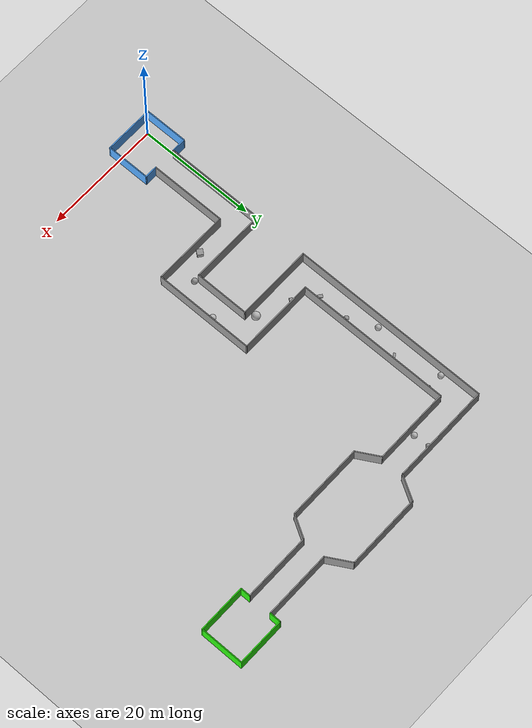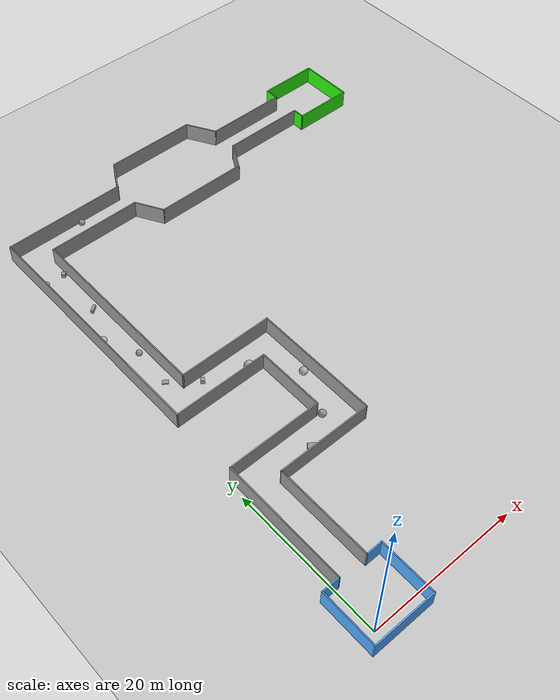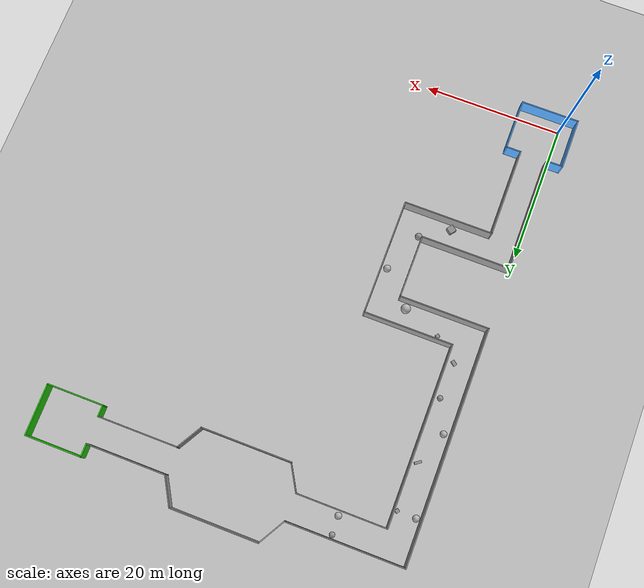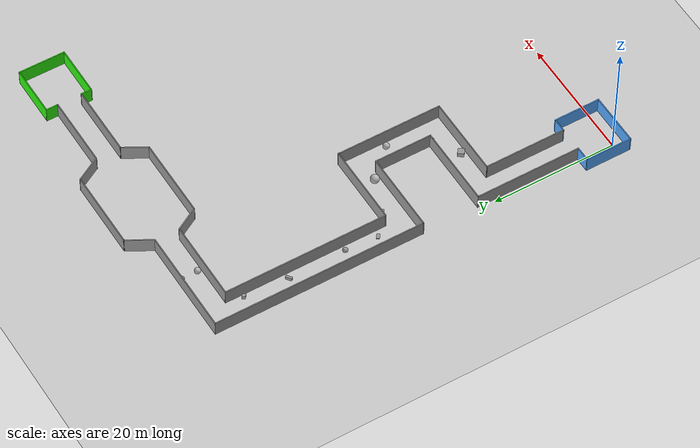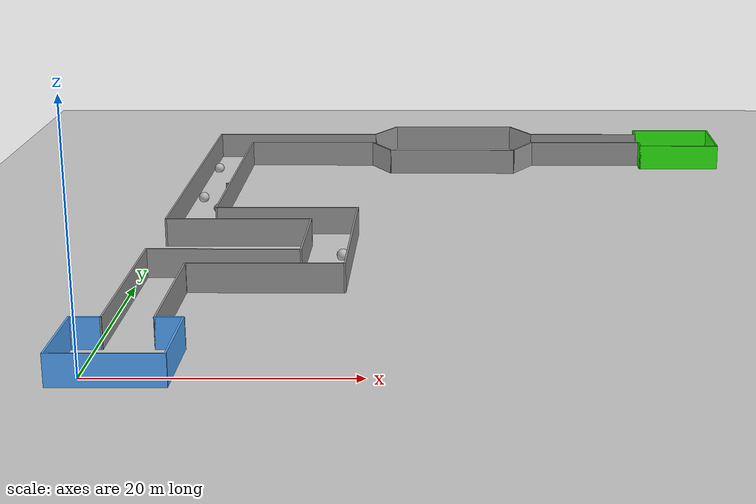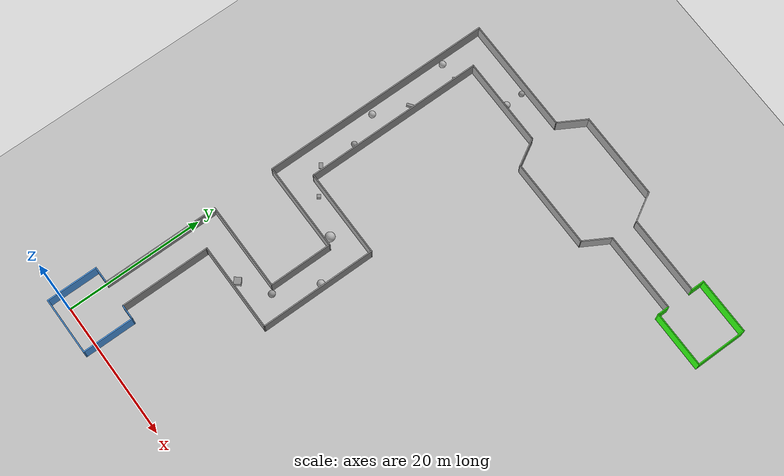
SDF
<sdf version="1.6">
 <world name="default">
  <light name="sun" type="directional">
   <pose>0 0 10 0 -0 0</pose>
   <diffuse>0.8 0.8 0.8 1</diffuse>
   <specular>0.2 0.2 0.2 1</specular>
   <attenuation>
    <range>1000</range>
    <constant>0.9</constant>
    <linear>0.01</linear>
    <quadratic>0.001</quadratic>
   </attenuation>
   <direction>-0.5 0.1 -0.9</direction>
  </light>
  <model name="ground_plane">
   <static>1</static>
   <link name="link">
    <collision name="collision">
     <geometry><plane><normal>0 0 1</normal><size>300 300</size></plane></geometry>
     <surface>
      <contact><collide_bitmask>65535</collide_bitmask></contact>
      <friction><ode><mu>100</mu><mu2>50</mu2></ode></friction>
     </surface>
    </collision>
    <visual name="visual">
     <cast_shadows>0</cast_shadows>
     <geometry><plane><normal>0 0 1</normal><size>300 300</size></plane></geometry>
     <material>
      <script><uri>file://media/materials/scripts/gazebo.material</uri><name>Gazebo/Grey</name></script>
     </material>
    </visual>
   </link>
  </model>
  <gravity>0 0 -9.8</gravity>
  <magnetic_field>6e-06 2.3e-05 -4.2e-05</magnetic_field>
  <atmosphere type="adiabatic"/>
  <physics name="default_physics" default="0" type="ode">
   <max_step_size>0.001</max_step_size>
   <real_time_factor>1</real_time_factor>
   <real_time_update_rate>1000</real_time_update_rate>
  </physics>
  <scene><ambient>0.4 0.4 0.4 1</ambient><background>0.7 0.7 0.7 1</background><shadows>1</shadows></scene>
  <spherical_coordinates>
   <surface_model>EARTH_WGS84</surface_model>
   <latitude_deg>0</latitude_deg>
   <longitude_deg>0</longitude_deg>
   <elevation>0</elevation>
   <heading_deg>0</heading_deg>
  </spherical_coordinates>
  <model name="vis_cue_test_field_bigger">
   <pose>25.9361 33.8207 0 0 -0 0</pose>
   <link name="Wall_0">
    <collision name="Wall_0_Collision">
     <geometry><box><size>8.51036 0.16 2.5</size></box></geometry>
     <pose>0 0 1.25 0 -0 0</pose>
    </collision>
    <visual name="Wall_0_Visual">
     <pose>0 0 1.25 0 -0 0</pose>
     <geometry><box><size>8.51036 0.16 2.5</size></box></geometry>
     <material>
      <script><uri>file://media/materials/scripts/gazebo.material</uri><name>Gazebo/Grey</name></script>
      <ambient>0.333333 0.666667 1 1</ambient>
     </material>
     <meta><layer>0</layer></meta>
    </visual>
    <pose>-23.6226 -35.4698 0 0 -0 0</pose>
   </link>
   <link name="Wall_1">
    <collision name="Wall_1_Collision">
     <geometry><box><size>7.5 0.15 2.5</size></box></geometry>
     <pose>0 0 1.25 0 -0 0</pose>
    </collision>
    <visual name="Wall_1_Visual">
     <pose>0 0 1.25 0 -0 0</pose>
     <geometry><box><size>7.5 0.15 2.5</size></box></geometry>
     <material>
      <script><uri>file://media/materials/scripts/gazebo.material</uri><name>Gazebo/Grey</name></script>
      <ambient>0.333333 0.666667 1 1</ambient>
     </material>
     <meta><layer>0</layer></meta>
    </visual>
    <pose>-19.4474 -31.7948 0 0 -0 1.57075</pose>
   </link>
   <link name="Wall_11">
    <collision name="Wall_11_Collision">
     <geometry><box><size>13 0.15 2.5</size></box></geometry>
     <pose>0 0 1.25 0 -0 0</pose>
    </collision>
    <visual name="Wall_11_Visual">
     <pose>0 0 1.25 0 -0 0</pose>
     <geometry><box><size>13 0.15 2.5</size></box></geometry>
     <material>
      <script><uri>file://media/materials/scripts/gazebo.material</uri><name>Gazebo/Grey</name></script>
      <ambient>1 1 1 1</ambient>
     </material>
     <meta><layer>0</layer></meta>
    </visual>
    <pose>-21.5472 -21.6949 0 0 -0 1.5708</pose>
   </link>
   <link name="Wall_14">
    <collision name="Wall_14_Collision">
     <geometry><box><size>0.25 0.15 2.5</size></box></geometry>
     <pose>0 0 1.25 0 -0 0</pose>
    </collision>
    <visual name="Wall_14_Visual">
     <pose>0 0 1.25 0 -0 0</pose>
     <geometry><box><size>0.25 0.15 2.5</size></box></geometry>
     <material>
      <script><uri>file://media/materials/scripts/gazebo.material</uri><name>Gazebo/Grey</name></script>
      <ambient>1 1 1 1</ambient>
     </material>
     <meta><layer>0</layer></meta>
    </visual>
    <pose>-21.5472 -15.2199 0 0 -0 1.5708</pose>
   </link>
   <link name="Wall_15">
    <collision name="Wall_15_Collision">
     <geometry><box><size>13 0.15 2.5</size></box></geometry>
     <pose>0 0 1.25 0 -0 0</pose>
    </collision>
    <visual name="Wall_15_Visual">
     <pose>0 0 1.25 0 -0 0</pose>
     <geometry><box><size>13 0.15 2.5</size></box></geometry>
     <material>
      <script><uri>file://media/materials/scripts/gazebo.material</uri><name>Gazebo/Grey</name></script>
      <ambient>1 1 1 1</ambient>
     </material>
     <meta><layer>0</layer></meta>
    </visual>
    <pose>-15.1222 -15.1699 0 0 -0 0</pose>
   </link>
   <link name="Wall_17">
    <collision name="Wall_17_Collision">
     <geometry><box><size>13 0.15 2.5</size></box></geometry>
     <pose>0 0 1.25 0 -0 0</pose>
    </collision>
    <visual name="Wall_17_Visual">
     <pose>0 0 1.25 0 -0 0</pose>
     <geometry><box><size>13 0.15 2.5</size></box></geometry>
     <material>
      <script><uri>file://media/materials/scripts/gazebo.material</uri><name>Gazebo/Grey</name></script>
      <ambient>1 1 1 1</ambient>
     </material>
     <meta><layer>0</layer></meta>
    </visual>
    <pose>-19.0222 -11.2699 0 0 -0 0</pose>
   </link>
   <link name="Wall_2">
    <collision name="Wall_2_Collision">
     <geometry><box><size>2.25 0.15 2.5</size></box></geometry>
     <pose>0 0 1.25 0 -0 0</pose>
    </collision>
    <visual name="Wall_2_Visual">
     <pose>0 0 1.25 0 -0 0</pose>
     <geometry><box><size>2.25 0.15 2.5</size></box></geometry>
     <material>
      <script><uri>file://media/materials/scripts/gazebo.material</uri><name>Gazebo/Grey</name></script>
      <ambient>0.333333 0.666667 1 1</ambient>
     </material>
     <meta><layer>0</layer></meta>
    </visual>
    <pose>-20.4972 -28.1199 0 0 -0 3.14159</pose>
   </link>
   <link name="Wall_20">
    <collision name="Wall_20_Collision">
     <geometry><box><size>17 0.15 2.5</size></box></geometry>
     <pose>0 0 1.25 0 -0 0</pose>
    </collision>
    <visual name="Wall_20_Visual">
     <pose>0 0 1.25 0 -0 0</pose>
     <geometry><box><size>17 0.15 2.5</size></box></geometry>
     <material>
      <script><uri>file://media/materials/scripts/gazebo.material</uri><name>Gazebo/Grey</name></script>
      <ambient>1 1 1 1</ambient>
     </material>
     <meta><layer>0</layer></meta>
    </visual>
    <pose>-8.69723 -6.74491 0 0 -0 1.5708</pose>
   </link>
   <link name="Wall_23">
    <collision name="Wall_23_Collision">
     <geometry><box><size>9.25 0.15 2.5</size></box></geometry>
     <pose>0 0 1.25 0 -0 0</pose>
    </collision>
    <visual name="Wall_23_Visual">
     <pose>0 0 1.25 0 -0 0</pose>
     <geometry><box><size>9.25 0.15 2.5</size></box></geometry>
     <material>
      <script><uri>file://media/materials/scripts/gazebo.material</uri><name>Gazebo/Grey</name></script>
      <ambient>1 1 1 1</ambient>
     </material>
     <meta><layer>0</layer></meta>
    </visual>
    <pose>-12.5972 -6.71991 0 0 -0 1.5708</pose>
   </link>
   <link name="Wall_25">
    <collision name="Wall_25_Collision">
     <geometry><box><size>13 0.15 2.5</size></box></geometry>
     <pose>0 0 1.25 0 -0 0</pose>
    </collision>
    <visual name="Wall_25_Visual">
     <pose>0 0 1.25 0 -0 0</pose>
     <geometry><box><size>13 0.15 2.5</size></box></geometry>
     <material>
      <script><uri>file://media/materials/scripts/gazebo.material</uri><name>Gazebo/Grey</name></script>
      <ambient>1 1 1 1</ambient>
     </material>
     <meta><layer>0</layer></meta>
    </visual>
    <pose>-15.1222 1.68009 0 0 -0 3.14159</pose>
   </link>
   <link name="Wall_29">
    <collision name="Wall_29_Collision">
     <geometry><box><size>13 0.15 2.5</size></box></geometry>
     <pose>0 0 1.25 0 -0 0</pose>
    </collision>
    <visual name="Wall_29_Visual">
     <pose>0 0 1.25 0 -0 0</pose>
     <geometry><box><size>13 0.15 2.5</size></box></geometry>
     <material>
      <script><uri>file://media/materials/scripts/gazebo.material</uri><name>Gazebo/Grey</name></script>
      <ambient>1 1 1 1</ambient>
     </material>
     <meta><layer>0</layer></meta>
    </visual>
    <pose>-19.0222 -2.16991 0 0 -0 3.14159</pose>
   </link>
   <link name="Wall_31">
    <collision name="Wall_31_Collision">
     <geometry><box><size>34 0.15 2.5</size></box></geometry>
     <pose>0 0 1.25 0 -0 0</pose>
    </collision>
    <visual name="Wall_31_Visual">
     <pose>0 0 1.25 0 -0 0</pose>
     <geometry><box><size>34 0.15 2.5</size></box></geometry>
     <material>
      <script><uri>file://media/materials/scripts/gazebo.material</uri><name>Gazebo/Grey</name></script>
      <ambient>1 1 1 1</ambient>
     </material>
     <meta><layer>0</layer></meta>
    </visual>
    <pose>-25.4472 14.7551 0 0 -0 1.5708</pose>
   </link>
   <link name="Wall_33">
    <collision name="Wall_33_Collision">
     <geometry><box><size>26.25 0.15 2.5</size></box></geometry>
     <pose>0 0 1.25 0 -0 0</pose>
    </collision>
    <visual name="Wall_33_Visual">
     <pose>0 0 1.25 0 -0 0</pose>
     <geometry><box><size>26.25 0.15 2.5</size></box></geometry>
     <material>
      <script><uri>file://media/materials/scripts/gazebo.material</uri><name>Gazebo/Grey</name></script>
      <ambient>1 1 1 1</ambient>
     </material>
     <meta><layer>0</layer></meta>
    </visual>
    <pose>-21.5472 14.7301 0 0 -0 1.5708</pose>
   </link>
   <link name="Wall_35">
    <collision name="Wall_35_Collision">
     <geometry><box><size>17 0.15 2.5</size></box></geometry>
     <pose>0 0 1.25 0 -0 0</pose>
    </collision>
    <visual name="Wall_35_Visual">
     <pose>0 0 1.25 0 -0 0</pose>
     <geometry><box><size>17 0.15 2.5</size></box></geometry>
     <material>
      <script><uri>file://media/materials/scripts/gazebo.material</uri><name>Gazebo/Grey</name></script>
      <ambient>1 1 1 1</ambient>
     </material>
     <meta><layer>0</layer></meta>
    </visual>
    <pose>-17.0222 31.6801 0 0 -0 0</pose>
   </link>
   <link name="Wall_36">
    <collision name="Wall_36_Collision">
     <geometry><box><size>4.5 0.15 2.5</size></box></geometry>
     <pose>0 0 1.25 0 -0 0</pose>
    </collision>
    <visual name="Wall_36_Visual">
     <pose>0 0 1.25 0 -0 0</pose>
     <geometry><box><size>4.5 0.15 2.5</size></box></geometry>
     <material>
      <script><uri>file://media/materials/scripts/gazebo.material</uri><name>Gazebo/Grey</name></script>
      <ambient>1 1 1 1</ambient>
     </material>
     <meta><layer>0</layer></meta>
    </visual>
    <pose>-7.50973 33.5637 0 0 -0 1.0472</pose>
   </link>
   <link name="Wall_37">
    <collision name="Wall_37_Collision">
     <geometry><box><size>12.75 0.15 2.5</size></box></geometry>
     <pose>0 0 1.25 0 -0 0</pose>
    </collision>
    <visual name="Wall_37_Visual">
     <pose>0 0 1.25 0 -0 0</pose>
     <geometry><box><size>12.75 0.15 2.5</size></box></geometry>
     <material>
      <script><uri>file://media/materials/scripts/gazebo.material</uri><name>Gazebo/Grey</name></script>
      <ambient>1 1 1 1</ambient>
     </material>
     <meta><layer>0</layer></meta>
    </visual>
    <pose>-0.122227 35.4473 0 0 -0 0</pose>
   </link>
   <link name="Wall_38">
    <collision name="Wall_38_Collision">
     <geometry><box><size>4.5 0.15 2.5</size></box></geometry>
     <pose>0 0 1.25 0 -0 0</pose>
    </collision>
    <visual name="Wall_38_Visual">
     <pose>0 0 1.25 0 -0 0</pose>
     <geometry><box><size>4.5 0.15 2.5</size></box></geometry>
     <material>
      <script><uri>file://media/materials/scripts/gazebo.material</uri><name>Gazebo/Grey</name></script>
      <ambient>1 1 1 1</ambient>
     </material>
     <meta><layer>0</layer></meta>
    </visual>
    <pose>7.26527 33.5637 0 0 0 -1.0472</pose>
   </link>
   <link name="Wall_40">
    <collision name="Wall_40_Collision">
     <geometry><box><size>13 0.15 2.5</size></box></geometry>
     <pose>0 0 1.25 0 -0 0</pose>
    </collision>
    <visual name="Wall_40_Visual">
     <pose>0 0 1.25 0 -0 0</pose>
     <geometry><box><size>13 0.15 2.5</size></box></geometry>
     <material>
      <script><uri>file://media/materials/scripts/gazebo.material</uri><name>Gazebo/Grey</name></script>
      <ambient>1 1 1 1</ambient>
     </material>
     <meta><layer>0</layer></meta>
    </visual>
    <pose>-15.1222 27.7801 0 0 -0 0</pose>
   </link>
   <link name="Wall_41">
    <collision name="Wall_41_Collision">
     <geometry><box><size>4.25 0.15 2.5</size></box></geometry>
     <pose>0 0 1.25 0 -0 0</pose>
    </collision>
    <visual name="Wall_41_Visual">
     <pose>0 0 1.25 0 -0 0</pose>
     <geometry><box><size>4.25 0.15 2.5</size></box></geometry>
     <material>
      <script><uri>file://media/materials/scripts/gazebo.material</uri><name>Gazebo/Grey</name></script>
      <ambient>1 1 1 1</ambient>
     </material>
     <meta><layer>0</layer></meta>
    </visual>
    <pose>-7.67223 26.0047 0 0 0 -1.0472</pose>
   </link>
   <link name="Wall_42">
    <collision name="Wall_42_Collision">
     <geometry><box><size>13 0.15 2.5</size></box></geometry>
     <pose>0 0 1.25 0 -0 0</pose>
    </collision>
    <visual name="Wall_42_Visual">
     <pose>0 0 1.25 0 -0 0</pose>
     <geometry><box><size>13 0.15 2.5</size></box></geometry>
     <material>
      <script><uri>file://media/materials/scripts/gazebo.material</uri><name>Gazebo/Grey</name></script>
      <ambient>1 1 1 1</ambient>
     </material>
     <meta><layer>0</layer></meta>
    </visual>
    <pose>-0.222227 24.2294 0 0 -0 0</pose>
   </link>
   <link name="Wall_43">
    <collision name="Wall_43_Collision">
     <geometry><box><size>4.25 0.15 2.5</size></box></geometry>
     <pose>0 0 1.25 0 -0 0</pose>
    </collision>
    <visual name="Wall_43_Visual">
     <pose>0 0 1.25 0 -0 0</pose>
     <geometry><box><size>4.25 0.15 2.5</size></box></geometry>
     <material>
      <script><uri>file://media/materials/scripts/gazebo.material</uri><name>Gazebo/Grey</name></script>
      <ambient>1 1 1 1</ambient>
     </material>
     <meta><layer>0</layer></meta>
    </visual>
    <pose>7.22777 26.0047 0 0 -0 1.0472</pose>
   </link>
   <link name="Wall_44">
    <collision name="Wall_44_Collision">
     <geometry><box><size>11.5 0.15 2.5</size></box></geometry>
     <pose>0 0 1.25 0 -0 0</pose>
    </collision>
    <visual name="Wall_44_Visual">
     <pose>0 0 1.25 0 -0 0</pose>
     <geometry><box><size>11.5 0.15 2.5</size></box></geometry>
     <material>
      <script><uri>file://media/materials/scripts/gazebo.material</uri><name>Gazebo/Grey</name></script>
      <ambient>1 1 1 1</ambient>
     </material>
     <meta><layer>0</layer></meta>
    </visual>
    <pose>13.9278 27.7801 0 0 -0 0</pose>
   </link>
   <link name="Wall_46">
    <collision name="Wall_46_Collision">
     <geometry><box><size>11.5 0.15 2.5</size></box></geometry>
     <pose>0 0 1.25 0 -0 0</pose>
    </collision>
    <visual name="Wall_46_Visual">
     <pose>0 0 1.25 0 -0 0</pose>
     <geometry><box><size>11.5 0.15 2.5</size></box></geometry>
     <material>
      <script><uri>file://media/materials/scripts/gazebo.material</uri><name>Gazebo/Grey</name></script>
      <ambient>1 1 1 1</ambient>
     </material>
     <meta><layer>0</layer></meta>
    </visual>
    <pose>14.0278 31.6801 0 0 -0 0</pose>
   </link>
   <link name="Wall_48">
    <collision name="Wall_48_Collision">
     <geometry><box><size>2 0.15 2.5</size></box></geometry>
     <pose>0 0 1.25 0 -0 0</pose>
    </collision>
    <visual name="Wall_48_Visual">
     <pose>0 0 1.25 0 -0 0</pose>
     <geometry><box><size>2 0.15 2.5</size></box></geometry>
     <material>
      <script><uri>file://media/materials/scripts/gazebo.material</uri><name>Gazebo/Grey</name></script>
      <ambient>0.180392 0.956863 0.0627451 1</ambient>
     </material>
     <meta><layer>0</layer></meta>
    </visual>
    <pose>19.7028 32.6051 0 0 -0 1.5708</pose>
   </link>
   <link name="Wall_49">
    <collision name="Wall_49_Collision">
     <geometry><box><size>8.25 0.15 2.5</size></box></geometry>
     <pose>0 0 1.25 0 -0 0</pose>
    </collision>
    <visual name="Wall_49_Visual">
     <pose>0 0 1.25 0 -0 0</pose>
     <geometry><box><size>8.25 0.15 2.5</size></box></geometry>
     <material>
      <script><uri>file://media/materials/scripts/gazebo.material</uri><name>Gazebo/Grey</name></script>
      <ambient>0.180392 0.956863 0.0627451 1</ambient>
     </material>
     <meta><layer>0</layer></meta>
    </visual>
    <pose>23.7528 33.5301 0 0 -0 0</pose>
   </link>
   <link name="Wall_5">
    <collision name="Wall_5_Collision">
     <geometry><box><size>7.5 0.15 2.5</size></box></geometry>
     <pose>0 0 1.25 0 -0 0</pose>
    </collision>
    <visual name="Wall_5_Visual">
     <pose>0 0 1.25 0 -0 0</pose>
     <geometry><box><size>7.5 0.15 2.5</size></box></geometry>
     <material>
      <script><uri>file://media/materials/scripts/gazebo.material</uri><name>Gazebo/Grey</name></script>
      <ambient>0.333333 0.666667 1 1</ambient>
     </material>
     <meta><layer>0</layer></meta>
    </visual>
    <pose>-27.7974 -31.7948 0 0 -0 1.57075</pose>
   </link>
   <link name="Wall_50">
    <collision name="Wall_50_Collision">
     <geometry><box><size>7.5 0.15 2.5</size></box></geometry>
     <pose>0 0 1.25 0 -0 0</pose>
    </collision>
    <visual name="Wall_50_Visual">
     <pose>0 0 1.25 0 -0 0</pose>
     <geometry><box><size>7.5 0.15 2.5</size></box></geometry>
     <material>
      <script><uri>file://media/materials/scripts/gazebo.material</uri><name>Gazebo/Grey</name></script>
      <ambient>0.180392 0.956863 0.0627451 1</ambient>
     </material>
     <meta><layer>0</layer></meta>
    </visual>
    <pose>27.8028 29.8551 0 0 0 -1.5708</pose>
   </link>
   <link name="Wall_51">
    <collision name="Wall_51_Collision">
     <geometry><box><size>8.25 0.15 2.5</size></box></geometry>
     <pose>0 0 1.25 0 -0 0</pose>
    </collision>
    <visual name="Wall_51_Visual">
     <pose>0 0 1.25 0 -0 0</pose>
     <geometry><box><size>8.25 0.15 2.5</size></box></geometry>
     <material>
      <script><uri>file://media/materials/scripts/gazebo.material</uri><name>Gazebo/Grey</name></script>
      <ambient>0.180392 0.956863 0.0627451 1</ambient>
     </material>
     <meta><layer>0</layer></meta>
    </visual>
    <pose>23.7528 26.1801 0 0 -0 3.14159</pose>
   </link>
   <link name="Wall_52">
    <collision name="Wall_52_Collision">
     <geometry><box><size>1.75 0.15 2.5</size></box></geometry>
     <pose>0 0 1.25 0 -0 0</pose>
    </collision>
    <visual name="Wall_52_Visual">
     <pose>0 0 1.25 0 -0 0</pose>
     <geometry><box><size>1.75 0.15 2.5</size></box></geometry>
     <material>
      <script><uri>file://media/materials/scripts/gazebo.material</uri><name>Gazebo/Grey</name></script>
      <ambient>0.180392 0.956863 0.0627451 1</ambient>
     </material>
     <meta><layer>0</layer></meta>
    </visual>
    <pose>19.7028 26.9801 0 0 -0 1.5708</pose>
   </link>
   <link name="Wall_6">
    <collision name="Wall_6_Collision">
     <geometry><box><size>2.5 0.15 2.5</size></box></geometry>
     <pose>0 0 1.25 0 -0 0</pose>
    </collision>
    <visual name="Wall_6_Visual">
     <pose>0 0 1.25 0 -0 0</pose>
     <geometry><box><size>2.5 0.15 2.5</size></box></geometry>
     <material>
      <script><uri>file://media/materials/scripts/gazebo.material</uri><name>Gazebo/Grey</name></script>
      <ambient>0.333333 0.666667 1 1</ambient>
     </material>
     <meta><layer>0</layer></meta>
    </visual>
    <pose>-26.6222 -28.1199 0 0 -0 0</pose>
   </link>
   <link name="Wall_9">
    <collision name="Wall_9_Collision">
     <geometry><box><size>17 0.15 2.5</size></box></geometry>
     <pose>0 0 1.25 0 -0 0</pose>
    </collision>
    <visual name="Wall_9_Visual">
     <pose>0 0 1.25 0 -0 0</pose>
     <geometry><box><size>17 0.15 2.5</size></box></geometry>
     <material>
      <script><uri>file://media/materials/scripts/gazebo.material</uri><name>Gazebo/Grey</name></script>
      <ambient>1 1 1 1</ambient>
     </material>
     <meta><layer>0</layer></meta>
    </visual>
    <pose>-25.4472 -19.6949 0 0 -0 1.5708</pose>
   </link>
   <static>1</static>
  </model>
  <model name="unit_box">
   <pose>9.79585 19.5107 0.376235 0 -0 0.905752</pose>
   <link name="link">
    <inertial>
     <mass>1</mass>
     <inertia>
      <ixx>0.166667</ixx>
      <ixy>0</ixy>
      <ixz>0</ixz>
      <iyy>0.166667</iyy>
      <iyz>0</iyz>
      <izz>0.166667</izz>
     </inertia>
    </inertial>
    <collision name="collision"><geometry><box><size>1 1 0.75247</size></box></geometry></collision>
    <visual name="visual">
     <geometry><box><size>1 1 0.75247</size></box></geometry>
     <material>
      <script><name>Gazebo/Grey</name><uri>file://media/materials/scripts/gazebo.material</uri></script>
     </material>
    </visual>
   </link>
  </model>
  <model name="unit_sphere">
   <pose>13.8111 22.104 0.5 0 -0 0</pose>
   <link name="link">
    <inertial>
     <mass>1</mass>
     <inertia><ixx>0.1</ixx><ixy>0</ixy><ixz>0</ixz><iyy>0.1</iyy><iyz>0</iyz><izz>0.1</izz></inertia>
    </inertial>
    <collision name="collision"><geometry><sphere><radius>0.5</radius></sphere></geometry></collision>
    <visual name="visual">
     <geometry><sphere><radius>0.5</radius></sphere></geometry>
     <material>
      <script><name>Gazebo/Grey</name><uri>file://media/materials/scripts/gazebo.material</uri></script>
     </material>
    </visual>
   </link>
  </model>
  <model name="unit_box_0">
   <pose>16.3896 28.0269 0.296926 0 0 -0.655788</pose>
   <link name="link">
    <inertial>
     <mass>1</mass>
     <inertia>
      <ixx>0.166667</ixx>
      <ixy>0</ixy>
      <ixz>0</ixz>
      <iyy>0.166667</iyy>
      <iyz>0</iyz>
      <izz>0.166667</izz>
     </inertia>
    </inertial>
    <collision name="collision">
     <geometry><box><size>0.524368 0.528281 0.593852</size></box></geometry>
    </collision>
    <visual name="visual">
     <geometry><box><size>0.524368 0.528281 0.593852</size></box></geometry>
     <material>
      <script><name>Gazebo/Grey</name><uri>file://media/materials/scripts/gazebo.material</uri></script>
     </material>
    </visual>
    <visual name="visual"><geometry><sphere><radius>0.296926</radius></sphere></geometry></visual>
    <visual name="visual_sphere_cue">
     <geometry><sphere><radius>0.534467</radius></sphere></geometry>
     <plugin name="blink" filename="libBlinkVisualPlugin.so">
      <color_a>0 1 0 0.2</color_a>
      <color_b>0 1 0 0.05</color_b>
      <period>2</period>
      <use_wall_time>true</use_wall_time>
     </plugin>
     <material>
      <script><uri>file://media/materials/scripts/gazebo.material</uri><name>__default__</name></script>
     </material>
    </visual>
   </link>
  </model>
  <model name="unit_sphere_0">
   <pose>11.9948 32.6217 0.5 0 -0 0</pose>
   <link name="link">
    <inertial>
     <mass>1</mass>
     <inertia><ixx>0.1</ixx><ixy>0</ixy><ixz>0</ixz><iyy>0.1</iyy><iyz>0</iyz><izz>0.1</izz></inertia>
    </inertial>
    <collision name="collision"><geometry><sphere><radius>0.5</radius></sphere></geometry></collision>
    <visual name="visual">
     <geometry><sphere><radius>0.5</radius></sphere></geometry>
     <material>
      <script><name>Gazebo/Grey</name><uri>file://media/materials/scripts/gazebo.material</uri></script>
     </material>
    </visual>
    <visual name="visual"><geometry><sphere><radius>0.5</radius></sphere></geometry></visual>
    <visual name="visual_sphere_cue">
     <geometry><sphere><radius>0.7</radius></sphere></geometry>
     <plugin name="blink" filename="libBlinkVisualPlugin.so">
      <color_a>0 1 0 0.2</color_a>
      <color_b>0 1 0 0.05</color_b>
      <period>2</period>
      <use_wall_time>true</use_wall_time>
     </plugin>
     <material>
      <script><uri>file://media/materials/scripts/gazebo.material</uri><name>__default__</name></script>
     </material>
    </visual>
   </link>
  </model>
  <model name="unit_box_0_clone">
   <pose>6.5761 34.7011 0.296926 0 0 -0.655788</pose>
   <link name="link">
    <inertial>
     <mass>1</mass>
     <inertia>
      <ixx>0.166667</ixx>
      <ixy>0</ixy>
      <ixz>0</ixz>
      <iyy>0.166667</iyy>
      <iyz>0</iyz>
      <izz>0.166667</izz>
     </inertia>
    </inertial>
    <collision name="collision">
     <geometry><box><size>0.524368 0.528281 0.593852</size></box></geometry>
    </collision>
    <visual name="visual">
     <geometry><box><size>0.524368 0.528281 0.593852</size></box></geometry>
     <material>
      <script><name>Gazebo/Grey</name><uri>file://media/materials/scripts/gazebo.material</uri></script>
     </material>
    </visual>
   </link>
   <plugin name="model_push" filename="libvisual_cue_plugin.so"/>
  </model>
  <model name="unit_box_0_clone_clone">
   <pose>3.19854 37.429 0.177768 0 0 -0.655788</pose>
   <link name="link">
    <inertial>
     <mass>1</mass>
     <inertia>
      <ixx>0.166667</ixx>
      <ixy>0</ixy>
      <ixz>0</ixz>
      <iyy>0.166667</iyy>
      <iyz>0</iyz>
      <izz>0.166667</izz>
     </inertia>
    </inertial>
    <collision name="collision"><geometry><box><size>0.8 0.528281 0.2</size></box></geometry></collision>
    <visual name="visual">
     <geometry><box><size>0.8 0.528281 0.2</size></box></geometry>
     <material>
      <script><name>Gazebo/Grey</name><uri>file://media/materials/scripts/gazebo.material</uri></script>
     </material>
    </visual>
   </link>
   <plugin name="model_push" filename="libvisual_cue_plugin.so"/>
  </model>
  <model name="unit_box_0_clone_clone_0">
   <pose>1.1244 59.0009 0.296926 0 0 -1.29806</pose>
   <link name="link">
    <inertial>
     <mass>1</mass>
     <inertia>
      <ixx>0.166667</ixx>
      <ixy>0</ixy>
      <ixz>0</ixz>
      <iyy>0.166667</iyy>
      <iyz>0</iyz>
      <izz>0.166667</izz>
     </inertia>
    </inertial>
    <collision name="collision">
     <geometry><box><size>0.524368 0.528281 0.593852</size></box></geometry>
    </collision>
    <visual name="visual">
     <geometry><box><size>0.524368 0.528281 0.593852</size></box></geometry>
     <material>
      <script><name>Gazebo/Grey</name><uri>file://media/materials/scripts/gazebo.material</uri></script>
     </material>
    </visual>
    <visual name="visual_sphere_cue">
     <geometry><sphere><radius>0.5</radius></sphere></geometry>
     <plugin name="blink" filename="libBlinkVisualPlugin.so">
      <color_a>0 1 0 0.2</color_a>
      <color_b>0 1 0 0.05</color_b>
      <period>2</period>
      <use_wall_time>true</use_wall_time>
     </plugin>
     <material>
      <script><uri>file://media/materials/scripts/gazebo.material</uri><name>__default__</name></script>
     </material>
    </visual>
   </link>
  </model>
  <model name="unit_box_0_clone_clone_1">
   <pose>3.82512 58.9718 0.296926 0 0 -0.652823</pose>
   <link name="link">
    <inertial>
     <mass>1</mass>
     <inertia>
      <ixx>0.166667</ixx>
      <ixy>0</ixy>
      <ixz>0</ixz>
      <iyy>0.166667</iyy>
      <iyz>0</iyz>
      <izz>0.166667</izz>
     </inertia>
    </inertial>
    <collision name="collision">
     <geometry><box><size>0.524368 0.528281 0.593852</size></box></geometry>
    </collision>
    <visual name="visual">
     <geometry><box><size>0.524368 0.528281 0.593852</size></box></geometry>
     <material>
      <script><name>Gazebo/Grey</name><uri>file://media/materials/scripts/gazebo.material</uri></script>
     </material>
    </visual>
   </link>
   <plugin name="model_push" filename="libvisual_cue_plugin.so"/>
  </model>
  <model name="unit_sphere_0_clone">
   <pose>10.9424 62.3394 0.412203 0 -0 0</pose>
   <link name="link">
    <inertial>
     <mass>1</mass>
     <inertia><ixx>0.1</ixx><ixy>0</ixy><ixz>0</ixz><iyy>0.1</iyy><iyz>0</iyz><izz>0.1</izz></inertia>
    </inertial>
    <collision name="collision"><geometry><sphere><radius>0.412203</radius></sphere></geometry></collision>
    <visual name="visual">
     <geometry><sphere><radius>0.412203</radius></sphere></geometry>
     <material>
      <script><name>Gazebo/Grey</name><uri>file://media/materials/scripts/gazebo.material</uri></script>
     </material>
    </visual>
    <visual name="visual_sphere_cue">
     <geometry><sphere><radius>0.494644</radius></sphere></geometry>
     <plugin name="blink" filename="libBlinkVisualPlugin.so">
      <color_a>0 1 0 0.2</color_a>
      <color_b>0 1 0 0.05</color_b>
      <period>2</period>
      <use_wall_time>true</use_wall_time>
     </plugin>
     <material>
      <script><uri>file://media/materials/scripts/gazebo.material</uri><name>__default__</name></script>
     </material>
    </visual>
   </link>
  </model>
  <model name="unit_sphere_0_clone_clone">
   <pose>10.8576 64.9402 0.412203 0.932007 0.115124 -0.393297</pose>
   <link name="link">
    <inertial>
     <mass>1</mass>
     <inertia><ixx>0.1</ixx><ixy>0</ixy><ixz>0</ixz><iyy>0.1</iyy><iyz>0</iyz><izz>0.1</izz></inertia>
    </inertial>
    <collision name="collision"><geometry><sphere><radius>0.412203</radius></sphere></geometry></collision>
    <visual name="visual">
     <geometry><sphere><radius>0.412203</radius></sphere></geometry>
     <material>
      <script><name>Gazebo/Grey</name><uri>file://media/materials/scripts/gazebo.material</uri></script>
     </material>
    </visual>
   </link>
   <plugin name="model_push" filename="libvisual_cue_plugin.so"/>
  </model>
  <model name="unit_sphere_0_clone_clone_clone">
   <pose>3.40392 42.7174 0.412203 0 -0 0</pose>
   <link name="link">
    <inertial>
     <mass>1</mass>
     <inertia><ixx>0.1</ixx><ixy>0</ixy><ixz>0</ixz><iyy>0.1</iyy><iyz>0</iyz><izz>0.1</izz></inertia>
    </inertial>
    <collision name="collision"><geometry><sphere><radius>0.412203</radius></sphere></geometry></collision>
    <visual name="visual">
     <geometry><sphere><radius>0.412203</radius></sphere></geometry>
     <material>
      <script><name>Gazebo/Grey</name><uri>file://media/materials/scripts/gazebo.material</uri></script>
     </material>
    </visual>
   </link>
   <plugin name="model_push" filename="libvisual_cue_plugin.so"/>
  </model>
  <model name="unit_box_0_clone_clone_0_clone">
   <pose>1.3572 47.1442 0.296926 0 0 -1.29806</pose>
   <link name="link">
    <inertial>
     <mass>1</mass>
     <inertia>
      <ixx>0.166667</ixx>
      <ixy>0</ixy>
      <ixz>0</ixz>
      <iyy>0.166667</iyy>
      <iyz>0</iyz>
      <izz>0.166667</izz>
     </inertia>
    </inertial>
    <collision name="collision">
     <geometry><box><size>0.524368 0.528281 0.593852</size></box></geometry>
    </collision>
    <visual name="visual">
     <geometry><box><size>0.524368 0.528281 0.593852</size></box></geometry>
     <material>
      <script><name>Gazebo/Grey</name><uri>file://media/materials/scripts/gazebo.material</uri></script>
     </material>
    </visual>
    <visual name="visual_sphere_cue">
     <geometry><sphere><radius>0.5</radius></sphere></geometry>
     <plugin name="blink" filename="libBlinkVisualPlugin.so">
      <color_a>0 1 0 0.2</color_a>
      <color_b>0 1 0 0.05</color_b>
      <period>2</period>
      <use_wall_time>true</use_wall_time>
     </plugin>
     <material>
      <script><uri>file://media/materials/scripts/gazebo.material</uri><name>__default__</name></script>
     </material>
    </visual>
   </link>
  </model>
  <model name="unit_box_0_clone_clone_clone">
   <pose>3.35467 51.9592 0.26414 1.5708 -0 0.613441</pose>
   <link name="link">
    <inertial>
     <mass>1</mass>
     <inertia>
      <ixx>0.166667</ixx>
      <ixy>0</ixy>
      <ixz>0</ixz>
      <iyy>0.166667</iyy>
      <iyz>0</iyz>
      <izz>0.166667</izz>
     </inertia>
    </inertial>
    <collision name="collision"><geometry><box><size>1.00816 0.528281 0.355537</size></box></geometry></collision>
    <visual name="visual">
     <geometry><box><size>1.00816 0.528281 0.355537</size></box></geometry>
     <material>
      <script><name>Gazebo/Grey</name><uri>file://media/materials/scripts/gazebo.material</uri></script>
     </material>
    </visual>
   </link>
  </model>
 </world>
</sdf>
